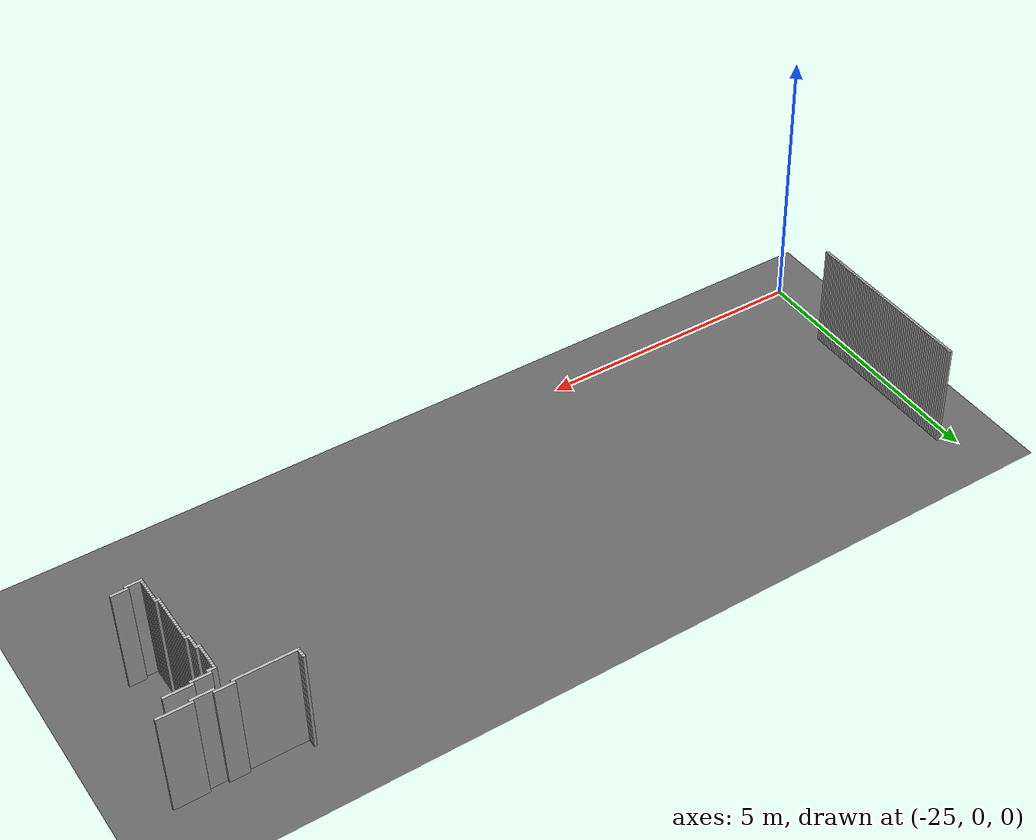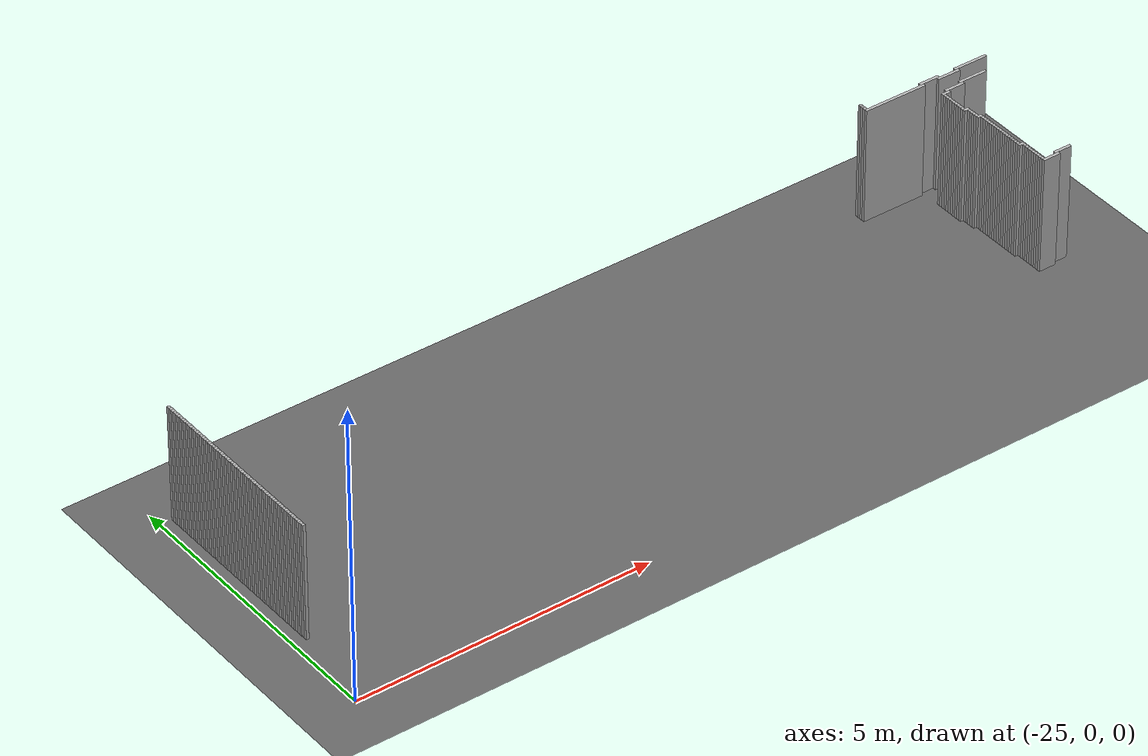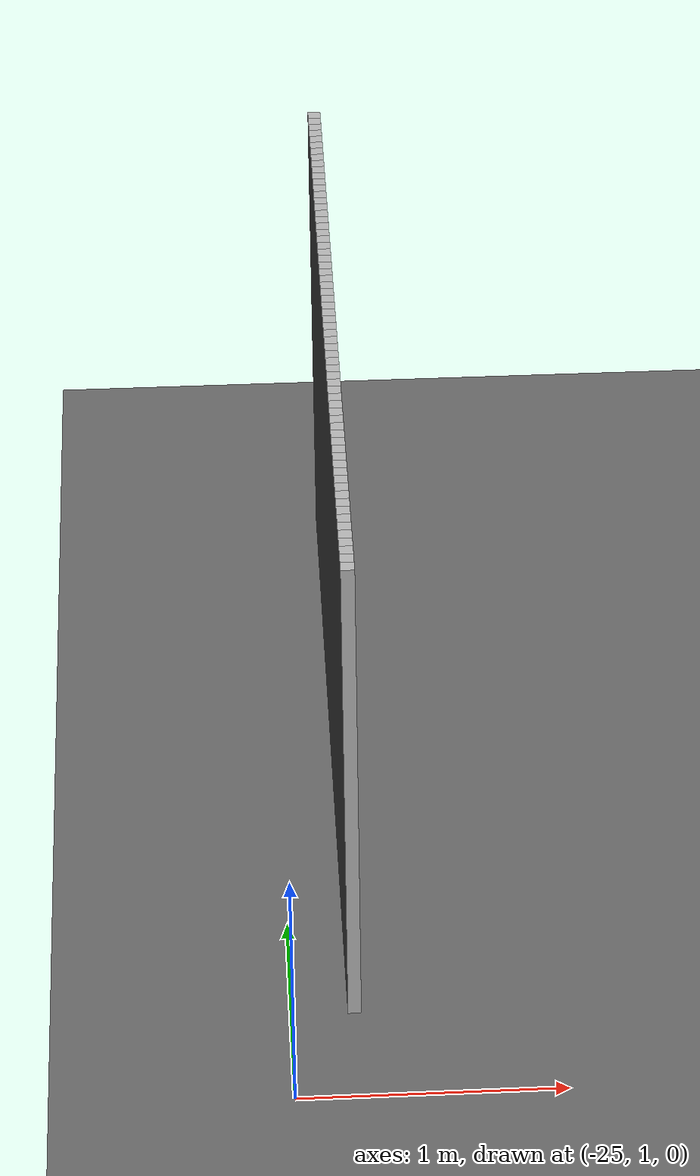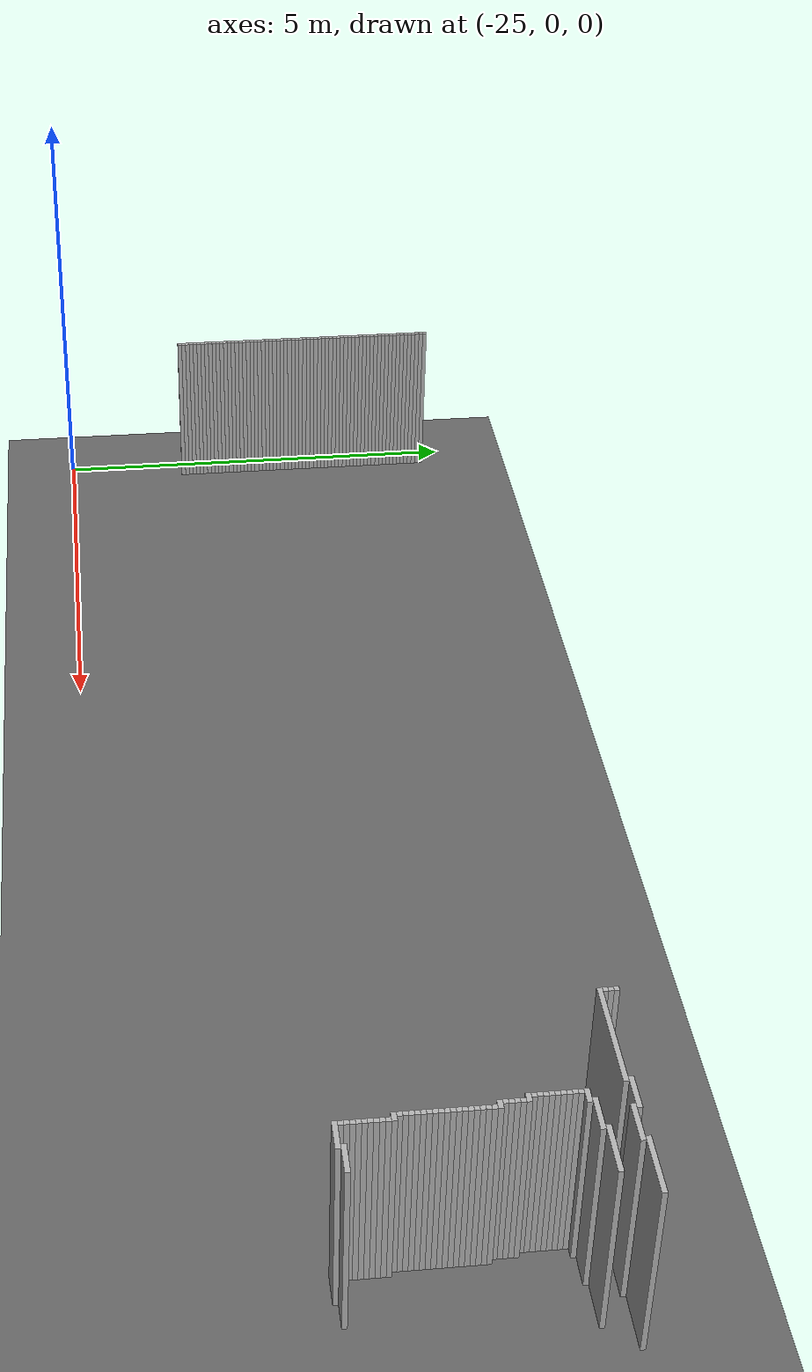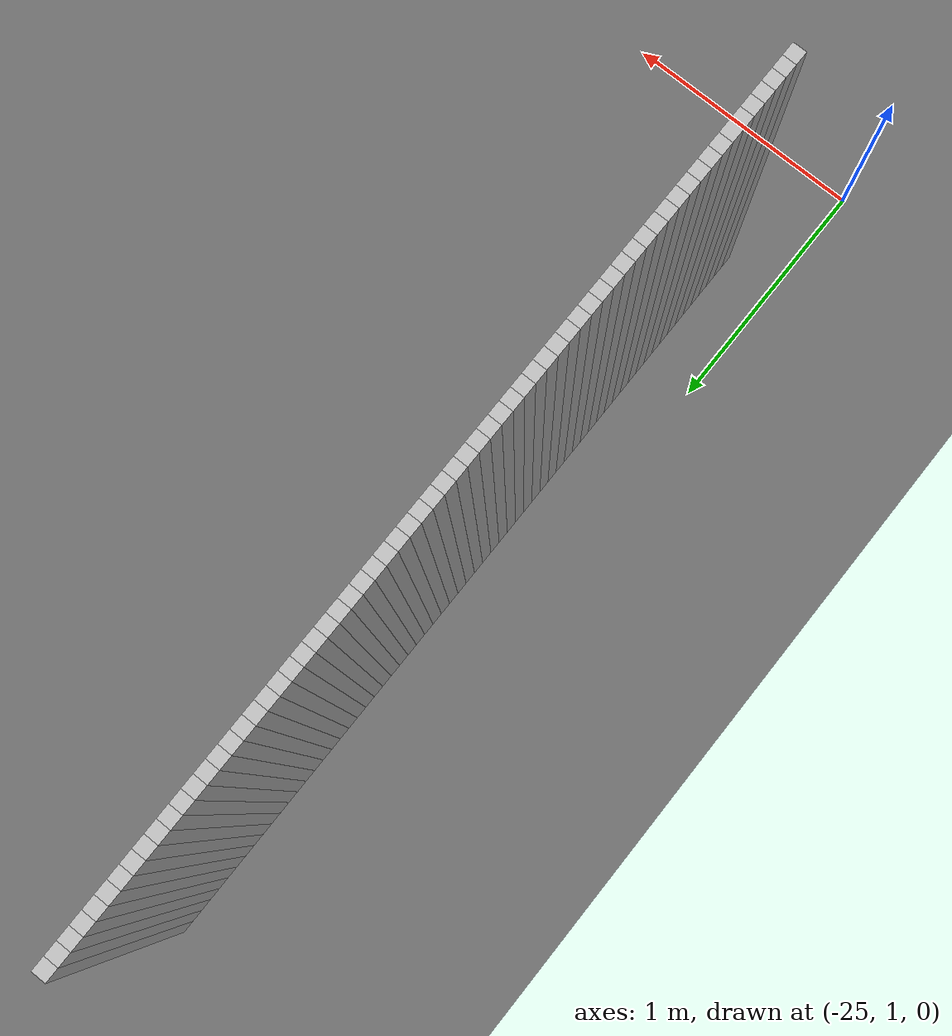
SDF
<sdf version="1.8">
 <world name="real_map">
  <model name="ground">
   <static>true</static>
   <link name="l">
    <collision name="c"><geometry><plane><normal>0 0 1</normal><size>100 100</size></plane></geometry></collision>
    <visual name="v">
     <geometry><plane><normal>0 0 1</normal><size>100 100</size></plane></geometry>
     <material><ambient>0.3 0.3 0.3 1</ambient><diffuse>0.4 0.4 0.4 1</diffuse></material>
    </visual>
   </link>
  </model>
  <model name="walls">
   <static>true</static>
   <link name="w834">
    <pose>-24.766 4.742 1.000 0 0 0</pose>
    <collision name="c"><geometry><box><size>0.050 0.050 2.000</size></box></geometry></collision>
    <visual name="v">
     <geometry><box><size>0.050 0.050 2.000</size></box></geometry>
     <material><ambient>0.7 0.7 0.7 1</ambient><diffuse>0.7 0.7 0.7 1</diffuse></material>
    </visual>
   </link>
   <link name="w838">
    <pose>-24.766 4.692 1.000 0 0 0</pose>
    <collision name="c"><geometry><box><size>0.050 0.050 2.000</size></box></geometry></collision>
    <visual name="v">
     <geometry><box><size>0.050 0.050 2.000</size></box></geometry>
     <material><ambient>0.7 0.7 0.7 1</ambient><diffuse>0.7 0.7 0.7 1</diffuse></material>
    </visual>
   </link>
   <link name="w839">
    <pose>-12.616 4.692 1.000 0 0 0</pose>
    <collision name="c"><geometry><box><size>0.050 0.050 2.000</size></box></geometry></collision>
    <visual name="v">
     <geometry><box><size>0.050 0.050 2.000</size></box></geometry>
     <material><ambient>0.7 0.7 0.7 1</ambient><diffuse>0.7 0.7 0.7 1</diffuse></material>
    </visual>
   </link>
   <link name="w842">
    <pose>-24.766 4.642 1.000 0 0 0</pose>
    <collision name="c"><geometry><box><size>0.050 0.050 2.000</size></box></geometry></collision>
    <visual name="v">
     <geometry><box><size>0.050 0.050 2.000</size></box></geometry>
     <material><ambient>0.7 0.7 0.7 1</ambient><diffuse>0.7 0.7 0.7 1</diffuse></material>
    </visual>
   </link>
   <link name="w843">
    <pose>-12.616 4.642 1.000 0 0 0</pose>
    <collision name="c"><geometry><box><size>0.050 0.050 2.000</size></box></geometry></collision>
    <visual name="v">
     <geometry><box><size>0.050 0.050 2.000</size></box></geometry>
     <material><ambient>0.7 0.7 0.7 1</ambient><diffuse>0.7 0.7 0.7 1</diffuse></material>
    </visual>
   </link>
   <link name="w847">
    <pose>-24.766 4.592 1.000 0 0 0</pose>
    <collision name="c"><geometry><box><size>0.050 0.050 2.000</size></box></geometry></collision>
    <visual name="v">
     <geometry><box><size>0.050 0.050 2.000</size></box></geometry>
     <material><ambient>0.7 0.7 0.7 1</ambient><diffuse>0.7 0.7 0.7 1</diffuse></material>
    </visual>
   </link>
   <link name="w848">
    <pose>-12.616 4.592 1.000 0 0 0</pose>
    <collision name="c"><geometry><box><size>0.050 0.050 2.000</size></box></geometry></collision>
    <visual name="v">
     <geometry><box><size>0.050 0.050 2.000</size></box></geometry>
     <material><ambient>0.7 0.7 0.7 1</ambient><diffuse>0.7 0.7 0.7 1</diffuse></material>
    </visual>
   </link>
   <link name="w849">
    <pose>-11.416 4.592 1.000 0 0 0</pose>
    <collision name="c"><geometry><box><size>0.350 0.050 2.000</size></box></geometry></collision>
    <visual name="v">
     <geometry><box><size>0.350 0.050 2.000</size></box></geometry>
     <material><ambient>0.7 0.7 0.7 1</ambient><diffuse>0.7 0.7 0.7 1</diffuse></material>
    </visual>
   </link>
   <link name="w850">
    <pose>-10.641 4.592 1.000 0 0 0</pose>
    <collision name="c"><geometry><box><size>0.600 0.050 2.000</size></box></geometry></collision>
    <visual name="v">
     <geometry><box><size>0.600 0.050 2.000</size></box></geometry>
     <material><ambient>0.7 0.7 0.7 1</ambient><diffuse>0.7 0.7 0.7 1</diffuse></material>
    </visual>
   </link>
   <link name="w854">
    <pose>-24.766 4.542 1.000 0 0 0</pose>
    <collision name="c"><geometry><box><size>0.050 0.050 2.000</size></box></geometry></collision>
    <visual name="v">
     <geometry><box><size>0.050 0.050 2.000</size></box></geometry>
     <material><ambient>0.7 0.7 0.7 1</ambient><diffuse>0.7 0.7 0.7 1</diffuse></material>
    </visual>
   </link>
   <link name="w855">
    <pose>-12.091 4.542 1.000 0 0 0</pose>
    <collision name="c"><geometry><box><size>1.100 0.050 2.000</size></box></geometry></collision>
    <visual name="v">
     <geometry><box><size>1.100 0.050 2.000</size></box></geometry>
     <material><ambient>0.7 0.7 0.7 1</ambient><diffuse>0.7 0.7 0.7 1</diffuse></material>
    </visual>
   </link>
   <link name="w856">
    <pose>-11.091 4.542 1.000 0 0 0</pose>
    <collision name="c"><geometry><box><size>0.400 0.050 2.000</size></box></geometry></collision>
    <visual name="v">
     <geometry><box><size>0.400 0.050 2.000</size></box></geometry>
     <material><ambient>0.7 0.7 0.7 1</ambient><diffuse>0.7 0.7 0.7 1</diffuse></material>
    </visual>
   </link>
   <link name="w860">
    <pose>-24.766 4.492 1.000 0 0 0</pose>
    <collision name="c"><geometry><box><size>0.050 0.050 2.000</size></box></geometry></collision>
    <visual name="v">
     <geometry><box><size>0.050 0.050 2.000</size></box></geometry>
     <material><ambient>0.7 0.7 0.7 1</ambient><diffuse>0.7 0.7 0.7 1</diffuse></material>
    </visual>
   </link>
   <link name="w864">
    <pose>-24.766 4.442 1.000 0 0 0</pose>
    <collision name="c"><geometry><box><size>0.050 0.050 2.000</size></box></geometry></collision>
    <visual name="v">
     <geometry><box><size>0.050 0.050 2.000</size></box></geometry>
     <material><ambient>0.7 0.7 0.7 1</ambient><diffuse>0.7 0.7 0.7 1</diffuse></material>
    </visual>
   </link>
   <link name="w868">
    <pose>-24.766 4.392 1.000 0 0 0</pose>
    <collision name="c"><geometry><box><size>0.050 0.050 2.000</size></box></geometry></collision>
    <visual name="v">
     <geometry><box><size>0.050 0.050 2.000</size></box></geometry>
     <material><ambient>0.7 0.7 0.7 1</ambient><diffuse>0.7 0.7 0.7 1</diffuse></material>
    </visual>
   </link>
   <link name="w872">
    <pose>-24.766 4.342 1.000 0 0 0</pose>
    <collision name="c"><geometry><box><size>0.050 0.050 2.000</size></box></geometry></collision>
    <visual name="v">
     <geometry><box><size>0.050 0.050 2.000</size></box></geometry>
     <material><ambient>0.7 0.7 0.7 1</ambient><diffuse>0.7 0.7 0.7 1</diffuse></material>
    </visual>
   </link>
   <link name="w876">
    <pose>-24.766 4.292 1.000 0 0 0</pose>
    <collision name="c"><geometry><box><size>0.050 0.050 2.000</size></box></geometry></collision>
    <visual name="v">
     <geometry><box><size>0.050 0.050 2.000</size></box></geometry>
     <material><ambient>0.7 0.7 0.7 1</ambient><diffuse>0.7 0.7 0.7 1</diffuse></material>
    </visual>
   </link>
   <link name="w877">
    <pose>-10.841 4.292 1.000 0 0 0</pose>
    <collision name="c"><geometry><box><size>0.500 0.050 2.000</size></box></geometry></collision>
    <visual name="v">
     <geometry><box><size>0.500 0.050 2.000</size></box></geometry>
     <material><ambient>0.7 0.7 0.7 1</ambient><diffuse>0.7 0.7 0.7 1</diffuse></material>
    </visual>
   </link>
   <link name="w880">
    <pose>-24.766 4.242 1.000 0 0 0</pose>
    <collision name="c"><geometry><box><size>0.050 0.050 2.000</size></box></geometry></collision>
    <visual name="v">
     <geometry><box><size>0.050 0.050 2.000</size></box></geometry>
     <material><ambient>0.7 0.7 0.7 1</ambient><diffuse>0.7 0.7 0.7 1</diffuse></material>
    </visual>
   </link>
   <link name="w881">
    <pose>-11.216 4.242 1.000 0 0 0</pose>
    <collision name="c"><geometry><box><size>0.350 0.050 2.000</size></box></geometry></collision>
    <visual name="v">
     <geometry><box><size>0.350 0.050 2.000</size></box></geometry>
     <material><ambient>0.7 0.7 0.7 1</ambient><diffuse>0.7 0.7 0.7 1</diffuse></material>
    </visual>
   </link>
   <link name="w884">
    <pose>-24.766 4.192 1.000 0 0 0</pose>
    <collision name="c"><geometry><box><size>0.050 0.050 2.000</size></box></geometry></collision>
    <visual name="v">
     <geometry><box><size>0.050 0.050 2.000</size></box></geometry>
     <material><ambient>0.7 0.7 0.7 1</ambient><diffuse>0.7 0.7 0.7 1</diffuse></material>
    </visual>
   </link>
   <link name="w885">
    <pose>-11.416 4.192 1.000 0 0 0</pose>
    <collision name="c"><geometry><box><size>0.150 0.050 2.000</size></box></geometry></collision>
    <visual name="v">
     <geometry><box><size>0.150 0.050 2.000</size></box></geometry>
     <material><ambient>0.7 0.7 0.7 1</ambient><diffuse>0.7 0.7 0.7 1</diffuse></material>
    </visual>
   </link>
   <link name="w888">
    <pose>-24.766 4.142 1.000 0 0 0</pose>
    <collision name="c"><geometry><box><size>0.050 0.050 2.000</size></box></geometry></collision>
    <visual name="v">
     <geometry><box><size>0.050 0.050 2.000</size></box></geometry>
     <material><ambient>0.7 0.7 0.7 1</ambient><diffuse>0.7 0.7 0.7 1</diffuse></material>
    </visual>
   </link>
   <link name="w889">
    <pose>-11.466 4.142 1.000 0 0 0</pose>
    <collision name="c"><geometry><box><size>0.050 0.050 2.000</size></box></geometry></collision>
    <visual name="v">
     <geometry><box><size>0.050 0.050 2.000</size></box></geometry>
     <material><ambient>0.7 0.7 0.7 1</ambient><diffuse>0.7 0.7 0.7 1</diffuse></material>
    </visual>
   </link>
   <link name="w892">
    <pose>-24.766 4.092 1.000 0 0 0</pose>
    <collision name="c"><geometry><box><size>0.050 0.050 2.000</size></box></geometry></collision>
    <visual name="v">
     <geometry><box><size>0.050 0.050 2.000</size></box></geometry>
     <material><ambient>0.7 0.7 0.7 1</ambient><diffuse>0.7 0.7 0.7 1</diffuse></material>
    </visual>
   </link>
   <link name="w893">
    <pose>-11.466 4.092 1.000 0 0 0</pose>
    <collision name="c"><geometry><box><size>0.050 0.050 2.000</size></box></geometry></collision>
    <visual name="v">
     <geometry><box><size>0.050 0.050 2.000</size></box></geometry>
     <material><ambient>0.7 0.7 0.7 1</ambient><diffuse>0.7 0.7 0.7 1</diffuse></material>
    </visual>
   </link>
   <link name="w896">
    <pose>-24.766 4.042 1.000 0 0 0</pose>
    <collision name="c"><geometry><box><size>0.050 0.050 2.000</size></box></geometry></collision>
    <visual name="v">
     <geometry><box><size>0.050 0.050 2.000</size></box></geometry>
     <material><ambient>0.7 0.7 0.7 1</ambient><diffuse>0.7 0.7 0.7 1</diffuse></material>
    </visual>
   </link>
   <link name="w897">
    <pose>-11.466 4.042 1.000 0 0 0</pose>
    <collision name="c"><geometry><box><size>0.050 0.050 2.000</size></box></geometry></collision>
    <visual name="v">
     <geometry><box><size>0.050 0.050 2.000</size></box></geometry>
     <material><ambient>0.7 0.7 0.7 1</ambient><diffuse>0.7 0.7 0.7 1</diffuse></material>
    </visual>
   </link>
   <link name="w900">
    <pose>-24.766 3.992 1.000 0 0 0</pose>
    <collision name="c"><geometry><box><size>0.050 0.050 2.000</size></box></geometry></collision>
    <visual name="v">
     <geometry><box><size>0.050 0.050 2.000</size></box></geometry>
     <material><ambient>0.7 0.7 0.7 1</ambient><diffuse>0.7 0.7 0.7 1</diffuse></material>
    </visual>
   </link>
   <link name="w901">
    <pose>-11.466 3.992 1.000 0 0 0</pose>
    <collision name="c"><geometry><box><size>0.050 0.050 2.000</size></box></geometry></collision>
    <visual name="v">
     <geometry><box><size>0.050 0.050 2.000</size></box></geometry>
     <material><ambient>0.7 0.7 0.7 1</ambient><diffuse>0.7 0.7 0.7 1</diffuse></material>
    </visual>
   </link>
   <link name="w904">
    <pose>-24.766 3.942 1.000 0 0 0</pose>
    <collision name="c"><geometry><box><size>0.050 0.050 2.000</size></box></geometry></collision>
    <visual name="v">
     <geometry><box><size>0.050 0.050 2.000</size></box></geometry>
     <material><ambient>0.7 0.7 0.7 1</ambient><diffuse>0.7 0.7 0.7 1</diffuse></material>
    </visual>
   </link>
   <link name="w905">
    <pose>-11.466 3.942 1.000 0 0 0</pose>
    <collision name="c"><geometry><box><size>0.050 0.050 2.000</size></box></geometry></collision>
    <visual name="v">
     <geometry><box><size>0.050 0.050 2.000</size></box></geometry>
     <material><ambient>0.7 0.7 0.7 1</ambient><diffuse>0.7 0.7 0.7 1</diffuse></material>
    </visual>
   </link>
   <link name="w908">
    <pose>-24.766 3.892 1.000 0 0 0</pose>
    <collision name="c"><geometry><box><size>0.050 0.050 2.000</size></box></geometry></collision>
    <visual name="v">
     <geometry><box><size>0.050 0.050 2.000</size></box></geometry>
     <material><ambient>0.7 0.7 0.7 1</ambient><diffuse>0.7 0.7 0.7 1</diffuse></material>
    </visual>
   </link>
   <link name="w909">
    <pose>-11.466 3.892 1.000 0 0 0</pose>
    <collision name="c"><geometry><box><size>0.050 0.050 2.000</size></box></geometry></collision>
    <visual name="v">
     <geometry><box><size>0.050 0.050 2.000</size></box></geometry>
     <material><ambient>0.7 0.7 0.7 1</ambient><diffuse>0.7 0.7 0.7 1</diffuse></material>
    </visual>
   </link>
   <link name="w912">
    <pose>-24.766 3.842 1.000 0 0 0</pose>
    <collision name="c"><geometry><box><size>0.050 0.050 2.000</size></box></geometry></collision>
    <visual name="v">
     <geometry><box><size>0.050 0.050 2.000</size></box></geometry>
     <material><ambient>0.7 0.7 0.7 1</ambient><diffuse>0.7 0.7 0.7 1</diffuse></material>
    </visual>
   </link>
   <link name="w913">
    <pose>-11.466 3.842 1.000 0 0 0</pose>
    <collision name="c"><geometry><box><size>0.050 0.050 2.000</size></box></geometry></collision>
    <visual name="v">
     <geometry><box><size>0.050 0.050 2.000</size></box></geometry>
     <material><ambient>0.7 0.7 0.7 1</ambient><diffuse>0.7 0.7 0.7 1</diffuse></material>
    </visual>
   </link>
   <link name="w916">
    <pose>-24.766 3.792 1.000 0 0 0</pose>
    <collision name="c"><geometry><box><size>0.050 0.050 2.000</size></box></geometry></collision>
    <visual name="v">
     <geometry><box><size>0.050 0.050 2.000</size></box></geometry>
     <material><ambient>0.7 0.7 0.7 1</ambient><diffuse>0.7 0.7 0.7 1</diffuse></material>
    </visual>
   </link>
   <link name="w917">
    <pose>-11.466 3.792 1.000 0 0 0</pose>
    <collision name="c"><geometry><box><size>0.050 0.050 2.000</size></box></geometry></collision>
    <visual name="v">
     <geometry><box><size>0.050 0.050 2.000</size></box></geometry>
     <material><ambient>0.7 0.7 0.7 1</ambient><diffuse>0.7 0.7 0.7 1</diffuse></material>
    </visual>
   </link>
   <link name="w920">
    <pose>-24.766 3.742 1.000 0 0 0</pose>
    <collision name="c"><geometry><box><size>0.050 0.050 2.000</size></box></geometry></collision>
    <visual name="v">
     <geometry><box><size>0.050 0.050 2.000</size></box></geometry>
     <material><ambient>0.7 0.7 0.7 1</ambient><diffuse>0.7 0.7 0.7 1</diffuse></material>
    </visual>
   </link>
   <link name="w921">
    <pose>-11.466 3.742 1.000 0 0 0</pose>
    <collision name="c"><geometry><box><size>0.050 0.050 2.000</size></box></geometry></collision>
    <visual name="v">
     <geometry><box><size>0.050 0.050 2.000</size></box></geometry>
     <material><ambient>0.7 0.7 0.7 1</ambient><diffuse>0.7 0.7 0.7 1</diffuse></material>
    </visual>
   </link>
   <link name="w924">
    <pose>-24.766 3.692 1.000 0 0 0</pose>
    <collision name="c"><geometry><box><size>0.050 0.050 2.000</size></box></geometry></collision>
    <visual name="v">
     <geometry><box><size>0.050 0.050 2.000</size></box></geometry>
     <material><ambient>0.7 0.7 0.7 1</ambient><diffuse>0.7 0.7 0.7 1</diffuse></material>
    </visual>
   </link>
   <link name="w925">
    <pose>-11.441 3.692 1.000 0 0 0</pose>
    <collision name="c"><geometry><box><size>0.100 0.050 2.000</size></box></geometry></collision>
    <visual name="v">
     <geometry><box><size>0.100 0.050 2.000</size></box></geometry>
     <material><ambient>0.7 0.7 0.7 1</ambient><diffuse>0.7 0.7 0.7 1</diffuse></material>
    </visual>
   </link>
   <link name="w928">
    <pose>-24.766 3.642 1.000 0 0 0</pose>
    <collision name="c"><geometry><box><size>0.050 0.050 2.000</size></box></geometry></collision>
    <visual name="v">
     <geometry><box><size>0.050 0.050 2.000</size></box></geometry>
     <material><ambient>0.7 0.7 0.7 1</ambient><diffuse>0.7 0.7 0.7 1</diffuse></material>
    </visual>
   </link>
   <link name="w929">
    <pose>-11.416 3.642 1.000 0 0 0</pose>
    <collision name="c"><geometry><box><size>0.050 0.050 2.000</size></box></geometry></collision>
    <visual name="v">
     <geometry><box><size>0.050 0.050 2.000</size></box></geometry>
     <material><ambient>0.7 0.7 0.7 1</ambient><diffuse>0.7 0.7 0.7 1</diffuse></material>
    </visual>
   </link>
   <link name="w932">
    <pose>-24.766 3.592 1.000 0 0 0</pose>
    <collision name="c"><geometry><box><size>0.050 0.050 2.000</size></box></geometry></collision>
    <visual name="v">
     <geometry><box><size>0.050 0.050 2.000</size></box></geometry>
     <material><ambient>0.7 0.7 0.7 1</ambient><diffuse>0.7 0.7 0.7 1</diffuse></material>
    </visual>
   </link>
   <link name="w933">
    <pose>-11.416 3.592 1.000 0 0 0</pose>
    <collision name="c"><geometry><box><size>0.050 0.050 2.000</size></box></geometry></collision>
    <visual name="v">
     <geometry><box><size>0.050 0.050 2.000</size></box></geometry>
     <material><ambient>0.7 0.7 0.7 1</ambient><diffuse>0.7 0.7 0.7 1</diffuse></material>
    </visual>
   </link>
   <link name="w936">
    <pose>-24.766 3.542 1.000 0 0 0</pose>
    <collision name="c"><geometry><box><size>0.050 0.050 2.000</size></box></geometry></collision>
    <visual name="v">
     <geometry><box><size>0.050 0.050 2.000</size></box></geometry>
     <material><ambient>0.7 0.7 0.7 1</ambient><diffuse>0.7 0.7 0.7 1</diffuse></material>
    </visual>
   </link>
   <link name="w937">
    <pose>-11.416 3.542 1.000 0 0 0</pose>
    <collision name="c"><geometry><box><size>0.050 0.050 2.000</size></box></geometry></collision>
    <visual name="v">
     <geometry><box><size>0.050 0.050 2.000</size></box></geometry>
     <material><ambient>0.7 0.7 0.7 1</ambient><diffuse>0.7 0.7 0.7 1</diffuse></material>
    </visual>
   </link>
   <link name="w940">
    <pose>-24.766 3.492 1.000 0 0 0</pose>
    <collision name="c"><geometry><box><size>0.050 0.050 2.000</size></box></geometry></collision>
    <visual name="v">
     <geometry><box><size>0.050 0.050 2.000</size></box></geometry>
     <material><ambient>0.7 0.7 0.7 1</ambient><diffuse>0.7 0.7 0.7 1</diffuse></material>
    </visual>
   </link>
   <link name="w941">
    <pose>-11.416 3.492 1.000 0 0 0</pose>
    <collision name="c"><geometry><box><size>0.050 0.050 2.000</size></box></geometry></collision>
    <visual name="v">
     <geometry><box><size>0.050 0.050 2.000</size></box></geometry>
     <material><ambient>0.7 0.7 0.7 1</ambient><diffuse>0.7 0.7 0.7 1</diffuse></material>
    </visual>
   </link>
   <link name="w944">
    <pose>-24.766 3.442 1.000 0 0 0</pose>
    <collision name="c"><geometry><box><size>0.050 0.050 2.000</size></box></geometry></collision>
    <visual name="v">
     <geometry><box><size>0.050 0.050 2.000</size></box></geometry>
     <material><ambient>0.7 0.7 0.7 1</ambient><diffuse>0.7 0.7 0.7 1</diffuse></material>
    </visual>
   </link>
   <link name="w945">
    <pose>-11.391 3.442 1.000 0 0 0</pose>
    <collision name="c"><geometry><box><size>0.100 0.050 2.000</size></box></geometry></collision>
    <visual name="v">
     <geometry><box><size>0.100 0.050 2.000</size></box></geometry>
     <material><ambient>0.7 0.7 0.7 1</ambient><diffuse>0.7 0.7 0.7 1</diffuse></material>
    </visual>
   </link>
   <link name="w948">
    <pose>-24.766 3.392 1.000 0 0 0</pose>
    <collision name="c"><geometry><box><size>0.050 0.050 2.000</size></box></geometry></collision>
    <visual name="v">
     <geometry><box><size>0.050 0.050 2.000</size></box></geometry>
     <material><ambient>0.7 0.7 0.7 1</ambient><diffuse>0.7 0.7 0.7 1</diffuse></material>
    </visual>
   </link>
   <link name="w949">
    <pose>-11.366 3.392 1.000 0 0 0</pose>
    <collision name="c"><geometry><box><size>0.050 0.050 2.000</size></box></geometry></collision>
    <visual name="v">
     <geometry><box><size>0.050 0.050 2.000</size></box></geometry>
     <material><ambient>0.7 0.7 0.7 1</ambient><diffuse>0.7 0.7 0.7 1</diffuse></material>
    </visual>
   </link>
   <link name="w952">
    <pose>-24.766 3.342 1.000 0 0 0</pose>
    <collision name="c"><geometry><box><size>0.050 0.050 2.000</size></box></geometry></collision>
    <visual name="v">
     <geometry><box><size>0.050 0.050 2.000</size></box></geometry>
     <material><ambient>0.7 0.7 0.7 1</ambient><diffuse>0.7 0.7 0.7 1</diffuse></material>
    </visual>
   </link>
   <link name="w953">
    <pose>-11.366 3.342 1.000 0 0 0</pose>
    <collision name="c"><geometry><box><size>0.050 0.050 2.000</size></box></geometry></collision>
    <visual name="v">
     <geometry><box><size>0.050 0.050 2.000</size></box></geometry>
     <material><ambient>0.7 0.7 0.7 1</ambient><diffuse>0.7 0.7 0.7 1</diffuse></material>
    </visual>
   </link>
   <link name="w956">
    <pose>-24.766 3.292 1.000 0 0 0</pose>
    <collision name="c"><geometry><box><size>0.050 0.050 2.000</size></box></geometry></collision>
    <visual name="v">
     <geometry><box><size>0.050 0.050 2.000</size></box></geometry>
     <material><ambient>0.7 0.7 0.7 1</ambient><diffuse>0.7 0.7 0.7 1</diffuse></material>
    </visual>
   </link>
   <link name="w957">
    <pose>-11.366 3.292 1.000 0 0 0</pose>
    <collision name="c"><geometry><box><size>0.050 0.050 2.000</size></box></geometry></collision>
    <visual name="v">
     <geometry><box><size>0.050 0.050 2.000</size></box></geometry>
     <material><ambient>0.7 0.7 0.7 1</ambient><diffuse>0.7 0.7 0.7 1</diffuse></material>
    </visual>
   </link>
   <link name="w960">
    <pose>-24.766 3.242 1.000 0 0 0</pose>
    <collision name="c"><geometry><box><size>0.050 0.050 2.000</size></box></geometry></collision>
    <visual name="v">
     <geometry><box><size>0.050 0.050 2.000</size></box></geometry>
     <material><ambient>0.7 0.7 0.7 1</ambient><diffuse>0.7 0.7 0.7 1</diffuse></material>
    </visual>
   </link>
   <link name="w961">
    <pose>-11.366 3.242 1.000 0 0 0</pose>
    <collision name="c"><geometry><box><size>0.050 0.050 2.000</size></box></geometry></collision>
    <visual name="v">
     <geometry><box><size>0.050 0.050 2.000</size></box></geometry>
     <material><ambient>0.7 0.7 0.7 1</ambient><diffuse>0.7 0.7 0.7 1</diffuse></material>
    </visual>
   </link>
   <link name="w964">
    <pose>-24.766 3.192 1.000 0 0 0</pose>
    <collision name="c"><geometry><box><size>0.050 0.050 2.000</size></box></geometry></collision>
    <visual name="v">
     <geometry><box><size>0.050 0.050 2.000</size></box></geometry>
     <material><ambient>0.7 0.7 0.7 1</ambient><diffuse>0.7 0.7 0.7 1</diffuse></material>
    </visual>
   </link>
   <link name="w965">
    <pose>-11.366 3.192 1.000 0 0 0</pose>
    <collision name="c"><geometry><box><size>0.050 0.050 2.000</size></box></geometry></collision>
    <visual name="v">
     <geometry><box><size>0.050 0.050 2.000</size></box></geometry>
     <material><ambient>0.7 0.7 0.7 1</ambient><diffuse>0.7 0.7 0.7 1</diffuse></material>
    </visual>
   </link>
   <link name="w969">
    <pose>-24.766 3.142 1.000 0 0 0</pose>
    <collision name="c"><geometry><box><size>0.050 0.050 2.000</size></box></geometry></collision>
    <visual name="v">
     <geometry><box><size>0.050 0.050 2.000</size></box></geometry>
     <material><ambient>0.7 0.7 0.7 1</ambient><diffuse>0.7 0.7 0.7 1</diffuse></material>
    </visual>
   </link>
   <link name="w970">
    <pose>-11.366 3.142 1.000 0 0 0</pose>
    <collision name="c"><geometry><box><size>0.050 0.050 2.000</size></box></geometry></collision>
    <visual name="v">
     <geometry><box><size>0.050 0.050 2.000</size></box></geometry>
     <material><ambient>0.7 0.7 0.7 1</ambient><diffuse>0.7 0.7 0.7 1</diffuse></material>
    </visual>
   </link>
   <link name="w974">
    <pose>-24.766 3.092 1.000 0 0 0</pose>
    <collision name="c"><geometry><box><size>0.050 0.050 2.000</size></box></geometry></collision>
    <visual name="v">
     <geometry><box><size>0.050 0.050 2.000</size></box></geometry>
     <material><ambient>0.7 0.7 0.7 1</ambient><diffuse>0.7 0.7 0.7 1</diffuse></material>
    </visual>
   </link>
   <link name="w975">
    <pose>-11.366 3.092 1.000 0 0 0</pose>
    <collision name="c"><geometry><box><size>0.050 0.050 2.000</size></box></geometry></collision>
    <visual name="v">
     <geometry><box><size>0.050 0.050 2.000</size></box></geometry>
     <material><ambient>0.7 0.7 0.7 1</ambient><diffuse>0.7 0.7 0.7 1</diffuse></material>
    </visual>
   </link>
   <link name="w979">
    <pose>-24.766 3.042 1.000 0 0 0</pose>
    <collision name="c"><geometry><box><size>0.050 0.050 2.000</size></box></geometry></collision>
    <visual name="v">
     <geometry><box><size>0.050 0.050 2.000</size></box></geometry>
     <material><ambient>0.7 0.7 0.7 1</ambient><diffuse>0.7 0.7 0.7 1</diffuse></material>
    </visual>
   </link>
   <link name="w980">
    <pose>-11.366 3.042 1.000 0 0 0</pose>
    <collision name="c"><geometry><box><size>0.050 0.050 2.000</size></box></geometry></collision>
    <visual name="v">
     <geometry><box><size>0.050 0.050 2.000</size></box></geometry>
     <material><ambient>0.7 0.7 0.7 1</ambient><diffuse>0.7 0.7 0.7 1</diffuse></material>
    </visual>
   </link>
   <link name="w984">
    <pose>-24.766 2.992 1.000 0 0 0</pose>
    <collision name="c"><geometry><box><size>0.050 0.050 2.000</size></box></geometry></collision>
    <visual name="v">
     <geometry><box><size>0.050 0.050 2.000</size></box></geometry>
     <material><ambient>0.7 0.7 0.7 1</ambient><diffuse>0.7 0.7 0.7 1</diffuse></material>
    </visual>
   </link>
   <link name="w985">
    <pose>-11.366 2.992 1.000 0 0 0</pose>
    <collision name="c"><geometry><box><size>0.050 0.050 2.000</size></box></geometry></collision>
    <visual name="v">
     <geometry><box><size>0.050 0.050 2.000</size></box></geometry>
     <material><ambient>0.7 0.7 0.7 1</ambient><diffuse>0.7 0.7 0.7 1</diffuse></material>
    </visual>
   </link>
   <link name="w989">
    <pose>-24.766 2.942 1.000 0 0 0</pose>
    <collision name="c"><geometry><box><size>0.050 0.050 2.000</size></box></geometry></collision>
    <visual name="v">
     <geometry><box><size>0.050 0.050 2.000</size></box></geometry>
     <material><ambient>0.7 0.7 0.7 1</ambient><diffuse>0.7 0.7 0.7 1</diffuse></material>
    </visual>
   </link>
   <link name="w990">
    <pose>-11.366 2.942 1.000 0 0 0</pose>
    <collision name="c"><geometry><box><size>0.050 0.050 2.000</size></box></geometry></collision>
    <visual name="v">
     <geometry><box><size>0.050 0.050 2.000</size></box></geometry>
     <material><ambient>0.7 0.7 0.7 1</ambient><diffuse>0.7 0.7 0.7 1</diffuse></material>
    </visual>
   </link>
   <link name="w993">
    <pose>-24.766 2.892 1.000 0 0 0</pose>
    <collision name="c"><geometry><box><size>0.050 0.050 2.000</size></box></geometry></collision>
    <visual name="v">
     <geometry><box><size>0.050 0.050 2.000</size></box></geometry>
     <material><ambient>0.7 0.7 0.7 1</ambient><diffuse>0.7 0.7 0.7 1</diffuse></material>
    </visual>
   </link>
   <link name="w994">
    <pose>-11.366 2.892 1.000 0 0 0</pose>
    <collision name="c"><geometry><box><size>0.050 0.050 2.000</size></box></geometry></collision>
    <visual name="v">
     <geometry><box><size>0.050 0.050 2.000</size></box></geometry>
     <material><ambient>0.7 0.7 0.7 1</ambient><diffuse>0.7 0.7 0.7 1</diffuse></material>
    </visual>
   </link>
   <link name="w996">
    <pose>-24.766 2.842 1.000 0 0 0</pose>
    <collision name="c"><geometry><box><size>0.050 0.050 2.000</size></box></geometry></collision>
    <visual name="v">
     <geometry><box><size>0.050 0.050 2.000</size></box></geometry>
     <material><ambient>0.7 0.7 0.7 1</ambient><diffuse>0.7 0.7 0.7 1</diffuse></material>
    </visual>
   </link>
   <link name="w997">
    <pose>-11.366 2.842 1.000 0 0 0</pose>
    <collision name="c"><geometry><box><size>0.050 0.050 2.000</size></box></geometry></collision>
    <visual name="v">
     <geometry><box><size>0.050 0.050 2.000</size></box></geometry>
     <material><ambient>0.7 0.7 0.7 1</ambient><diffuse>0.7 0.7 0.7 1</diffuse></material>
    </visual>
   </link>
   <link name="w999">
    <pose>-24.766 2.792 1.000 0 0 0</pose>
    <collision name="c"><geometry><box><size>0.050 0.050 2.000</size></box></geometry></collision>
    <visual name="v">
     <geometry><box><size>0.050 0.050 2.000</size></box></geometry>
     <material><ambient>0.7 0.7 0.7 1</ambient><diffuse>0.7 0.7 0.7 1</diffuse></material>
    </visual>
   </link>
   <link name="w1000">
    <pose>-11.366 2.792 1.000 0 0 0</pose>
    <collision name="c"><geometry><box><size>0.050 0.050 2.000</size></box></geometry></collision>
    <visual name="v">
     <geometry><box><size>0.050 0.050 2.000</size></box></geometry>
     <material><ambient>0.7 0.7 0.7 1</ambient><diffuse>0.7 0.7 0.7 1</diffuse></material>
    </visual>
   </link>
   <link name="w1002">
    <pose>-24.766 2.742 1.000 0 0 0</pose>
    <collision name="c"><geometry><box><size>0.050 0.050 2.000</size></box></geometry></collision>
    <visual name="v">
     <geometry><box><size>0.050 0.050 2.000</size></box></geometry>
     <material><ambient>0.7 0.7 0.7 1</ambient><diffuse>0.7 0.7 0.7 1</diffuse></material>
    </visual>
   </link>
   <link name="w1003">
    <pose>-11.366 2.742 1.000 0 0 0</pose>
    <collision name="c"><geometry><box><size>0.050 0.050 2.000</size></box></geometry></collision>
    <visual name="v">
     <geometry><box><size>0.050 0.050 2.000</size></box></geometry>
     <material><ambient>0.7 0.7 0.7 1</ambient><diffuse>0.7 0.7 0.7 1</diffuse></material>
    </visual>
   </link>
   <link name="w1005">
    <pose>-24.766 2.692 1.000 0 0 0</pose>
    <collision name="c"><geometry><box><size>0.050 0.050 2.000</size></box></geometry></collision>
    <visual name="v">
     <geometry><box><size>0.050 0.050 2.000</size></box></geometry>
     <material><ambient>0.7 0.7 0.7 1</ambient><diffuse>0.7 0.7 0.7 1</diffuse></material>
    </visual>
   </link>
   <link name="w1006">
    <pose>-11.366 2.692 1.000 0 0 0</pose>
    <collision name="c"><geometry><box><size>0.050 0.050 2.000</size></box></geometry></collision>
    <visual name="v">
     <geometry><box><size>0.050 0.050 2.000</size></box></geometry>
     <material><ambient>0.7 0.7 0.7 1</ambient><diffuse>0.7 0.7 0.7 1</diffuse></material>
    </visual>
   </link>
   <link name="w1008">
    <pose>-24.766 2.642 1.000 0 0 0</pose>
    <collision name="c"><geometry><box><size>0.050 0.050 2.000</size></box></geometry></collision>
    <visual name="v">
     <geometry><box><size>0.050 0.050 2.000</size></box></geometry>
     <material><ambient>0.7 0.7 0.7 1</ambient><diffuse>0.7 0.7 0.7 1</diffuse></material>
    </visual>
   </link>
   <link name="w1009">
    <pose>-11.366 2.642 1.000 0 0 0</pose>
    <collision name="c"><geometry><box><size>0.050 0.050 2.000</size></box></geometry></collision>
    <visual name="v">
     <geometry><box><size>0.050 0.050 2.000</size></box></geometry>
     <material><ambient>0.7 0.7 0.7 1</ambient><diffuse>0.7 0.7 0.7 1</diffuse></material>
    </visual>
   </link>
   <link name="w1011">
    <pose>-24.766 2.592 1.000 0 0 0</pose>
    <collision name="c"><geometry><box><size>0.050 0.050 2.000</size></box></geometry></collision>
    <visual name="v">
     <geometry><box><size>0.050 0.050 2.000</size></box></geometry>
     <material><ambient>0.7 0.7 0.7 1</ambient><diffuse>0.7 0.7 0.7 1</diffuse></material>
    </visual>
   </link>
   <link name="w1012">
    <pose>-11.366 2.592 1.000 0 0 0</pose>
    <collision name="c"><geometry><box><size>0.050 0.050 2.000</size></box></geometry></collision>
    <visual name="v">
     <geometry><box><size>0.050 0.050 2.000</size></box></geometry>
     <material><ambient>0.7 0.7 0.7 1</ambient><diffuse>0.7 0.7 0.7 1</diffuse></material>
    </visual>
   </link>
   <link name="w1014">
    <pose>-24.766 2.542 1.000 0 0 0</pose>
    <collision name="c"><geometry><box><size>0.050 0.050 2.000</size></box></geometry></collision>
    <visual name="v">
     <geometry><box><size>0.050 0.050 2.000</size></box></geometry>
     <material><ambient>0.7 0.7 0.7 1</ambient><diffuse>0.7 0.7 0.7 1</diffuse></material>
    </visual>
   </link>
   <link name="w1015">
    <pose>-11.341 2.542 1.000 0 0 0</pose>
    <collision name="c"><geometry><box><size>0.100 0.050 2.000</size></box></geometry></collision>
    <visual name="v">
     <geometry><box><size>0.100 0.050 2.000</size></box></geometry>
     <material><ambient>0.7 0.7 0.7 1</ambient><diffuse>0.7 0.7 0.7 1</diffuse></material>
    </visual>
   </link>
   <link name="w1017">
    <pose>-24.766 2.492 1.000 0 0 0</pose>
    <collision name="c"><geometry><box><size>0.050 0.050 2.000</size></box></geometry></collision>
    <visual name="v">
     <geometry><box><size>0.050 0.050 2.000</size></box></geometry>
     <material><ambient>0.7 0.7 0.7 1</ambient><diffuse>0.7 0.7 0.7 1</diffuse></material>
    </visual>
   </link>
   <link name="w1018">
    <pose>-11.316 2.492 1.000 0 0 0</pose>
    <collision name="c"><geometry><box><size>0.050 0.050 2.000</size></box></geometry></collision>
    <visual name="v">
     <geometry><box><size>0.050 0.050 2.000</size></box></geometry>
     <material><ambient>0.7 0.7 0.7 1</ambient><diffuse>0.7 0.7 0.7 1</diffuse></material>
    </visual>
   </link>
   <link name="w1020">
    <pose>-24.766 2.442 1.000 0 0 0</pose>
    <collision name="c"><geometry><box><size>0.050 0.050 2.000</size></box></geometry></collision>
    <visual name="v">
     <geometry><box><size>0.050 0.050 2.000</size></box></geometry>
     <material><ambient>0.7 0.7 0.7 1</ambient><diffuse>0.7 0.7 0.7 1</diffuse></material>
    </visual>
   </link>
   <link name="w1021">
    <pose>-11.316 2.442 1.000 0 0 0</pose>
    <collision name="c"><geometry><box><size>0.050 0.050 2.000</size></box></geometry></collision>
    <visual name="v">
     <geometry><box><size>0.050 0.050 2.000</size></box></geometry>
     <material><ambient>0.7 0.7 0.7 1</ambient><diffuse>0.7 0.7 0.7 1</diffuse></material>
    </visual>
   </link>
   <link name="w1024">
    <pose>-24.766 2.392 1.000 0 0 0</pose>
    <collision name="c"><geometry><box><size>0.050 0.050 2.000</size></box></geometry></collision>
    <visual name="v">
     <geometry><box><size>0.050 0.050 2.000</size></box></geometry>
     <material><ambient>0.7 0.7 0.7 1</ambient><diffuse>0.7 0.7 0.7 1</diffuse></material>
    </visual>
   </link>
   <link name="w1025">
    <pose>-11.316 2.392 1.000 0 0 0</pose>
    <collision name="c"><geometry><box><size>0.050 0.050 2.000</size></box></geometry></collision>
    <visual name="v">
     <geometry><box><size>0.050 0.050 2.000</size></box></geometry>
     <material><ambient>0.7 0.7 0.7 1</ambient><diffuse>0.7 0.7 0.7 1</diffuse></material>
    </visual>
   </link>
   <link name="w1028">
    <pose>-24.766 2.342 1.000 0 0 0</pose>
    <collision name="c"><geometry><box><size>0.050 0.050 2.000</size></box></geometry></collision>
    <visual name="v">
     <geometry><box><size>0.050 0.050 2.000</size></box></geometry>
     <material><ambient>0.7 0.7 0.7 1</ambient><diffuse>0.7 0.7 0.7 1</diffuse></material>
    </visual>
   </link>
   <link name="w1029">
    <pose>-11.316 2.342 1.000 0 0 0</pose>
    <collision name="c"><geometry><box><size>0.050 0.050 2.000</size></box></geometry></collision>
    <visual name="v">
     <geometry><box><size>0.050 0.050 2.000</size></box></geometry>
     <material><ambient>0.7 0.7 0.7 1</ambient><diffuse>0.7 0.7 0.7 1</diffuse></material>
    </visual>
   </link>
   <link name="w1032">
    <pose>-24.766 2.292 1.000 0 0 0</pose>
    <collision name="c"><geometry><box><size>0.050 0.050 2.000</size></box></geometry></collision>
    <visual name="v">
     <geometry><box><size>0.050 0.050 2.000</size></box></geometry>
     <material><ambient>0.7 0.7 0.7 1</ambient><diffuse>0.7 0.7 0.7 1</diffuse></material>
    </visual>
   </link>
   <link name="w1033">
    <pose>-11.316 2.292 1.000 0 0 0</pose>
    <collision name="c"><geometry><box><size>0.050 0.050 2.000</size></box></geometry></collision>
    <visual name="v">
     <geometry><box><size>0.050 0.050 2.000</size></box></geometry>
     <material><ambient>0.7 0.7 0.7 1</ambient><diffuse>0.7 0.7 0.7 1</diffuse></material>
    </visual>
   </link>
   <link name="w1036">
    <pose>-24.766 2.242 1.000 0 0 0</pose>
    <collision name="c"><geometry><box><size>0.050 0.050 2.000</size></box></geometry></collision>
    <visual name="v">
     <geometry><box><size>0.050 0.050 2.000</size></box></geometry>
     <material><ambient>0.7 0.7 0.7 1</ambient><diffuse>0.7 0.7 0.7 1</diffuse></material>
    </visual>
   </link>
   <link name="w1037">
    <pose>-11.316 2.242 1.000 0 0 0</pose>
    <collision name="c"><geometry><box><size>0.050 0.050 2.000</size></box></geometry></collision>
    <visual name="v">
     <geometry><box><size>0.050 0.050 2.000</size></box></geometry>
     <material><ambient>0.7 0.7 0.7 1</ambient><diffuse>0.7 0.7 0.7 1</diffuse></material>
    </visual>
   </link>
   <link name="w1040">
    <pose>-24.766 2.192 1.000 0 0 0</pose>
    <collision name="c"><geometry><box><size>0.050 0.050 2.000</size></box></geometry></collision>
    <visual name="v">
     <geometry><box><size>0.050 0.050 2.000</size></box></geometry>
     <material><ambient>0.7 0.7 0.7 1</ambient><diffuse>0.7 0.7 0.7 1</diffuse></material>
    </visual>
   </link>
   <link name="w1041">
    <pose>-11.316 2.192 1.000 0 0 0</pose>
    <collision name="c"><geometry><box><size>0.050 0.050 2.000</size></box></geometry></collision>
    <visual name="v">
     <geometry><box><size>0.050 0.050 2.000</size></box></geometry>
     <material><ambient>0.7 0.7 0.7 1</ambient><diffuse>0.7 0.7 0.7 1</diffuse></material>
    </visual>
   </link>
   <link name="w1044">
    <pose>-24.766 2.142 1.000 0 0 0</pose>
    <collision name="c"><geometry><box><size>0.050 0.050 2.000</size></box></geometry></collision>
    <visual name="v">
     <geometry><box><size>0.050 0.050 2.000</size></box></geometry>
     <material><ambient>0.7 0.7 0.7 1</ambient><diffuse>0.7 0.7 0.7 1</diffuse></material>
    </visual>
   </link>
   <link name="w1045">
    <pose>-11.316 2.142 1.000 0 0 0</pose>
    <collision name="c"><geometry><box><size>0.050 0.050 2.000</size></box></geometry></collision>
    <visual name="v">
     <geometry><box><size>0.050 0.050 2.000</size></box></geometry>
     <material><ambient>0.7 0.7 0.7 1</ambient><diffuse>0.7 0.7 0.7 1</diffuse></material>
    </visual>
   </link>
   <link name="w1048">
    <pose>-24.766 2.092 1.000 0 0 0</pose>
    <collision name="c"><geometry><box><size>0.050 0.050 2.000</size></box></geometry></collision>
    <visual name="v">
     <geometry><box><size>0.050 0.050 2.000</size></box></geometry>
     <material><ambient>0.7 0.7 0.7 1</ambient><diffuse>0.7 0.7 0.7 1</diffuse></material>
    </visual>
   </link>
   <link name="w1049">
    <pose>-11.316 2.092 1.000 0 0 0</pose>
    <collision name="c"><geometry><box><size>0.050 0.050 2.000</size></box></geometry></collision>
    <visual name="v">
     <geometry><box><size>0.050 0.050 2.000</size></box></geometry>
     <material><ambient>0.7 0.7 0.7 1</ambient><diffuse>0.7 0.7 0.7 1</diffuse></material>
    </visual>
   </link>
   <link name="w1050">
    <pose>-10.941 2.092 1.000 0 0 0</pose>
    <collision name="c"><geometry><box><size>0.300 0.050 2.000</size></box></geometry></collision>
    <visual name="v">
     <geometry><box><size>0.300 0.050 2.000</size></box></geometry>
     <material><ambient>0.7 0.7 0.7 1</ambient><diffuse>0.7 0.7 0.7 1</diffuse></material>
    </visual>
   </link>
   <link name="w1052">
    <pose>-24.766 2.042 1.000 0 0 0</pose>
    <collision name="c"><geometry><box><size>0.050 0.050 2.000</size></box></geometry></collision>
    <visual name="v">
     <geometry><box><size>0.050 0.050 2.000</size></box></geometry>
     <material><ambient>0.7 0.7 0.7 1</ambient><diffuse>0.7 0.7 0.7 1</diffuse></material>
    </visual>
   </link>
   <link name="w1053">
    <pose>-11.191 2.042 1.000 0 0 0</pose>
    <collision name="c"><geometry><box><size>0.300 0.050 2.000</size></box></geometry></collision>
    <visual name="v">
     <geometry><box><size>0.300 0.050 2.000</size></box></geometry>
     <material><ambient>0.7 0.7 0.7 1</ambient><diffuse>0.7 0.7 0.7 1</diffuse></material>
    </visual>
   </link>
   <link name="w1055">
    <pose>-24.766 1.992 1.000 0 0 0</pose>
    <collision name="c"><geometry><box><size>0.050 0.050 2.000</size></box></geometry></collision>
    <visual name="v">
     <geometry><box><size>0.050 0.050 2.000</size></box></geometry>
     <material><ambient>0.7 0.7 0.7 1</ambient><diffuse>0.7 0.7 0.7 1</diffuse></material>
    </visual>
   </link>
   <link name="w1057">
    <pose>-24.766 1.942 1.000 0 0 0</pose>
    <collision name="c"><geometry><box><size>0.050 0.050 2.000</size></box></geometry></collision>
    <visual name="v">
     <geometry><box><size>0.050 0.050 2.000</size></box></geometry>
     <material><ambient>0.7 0.7 0.7 1</ambient><diffuse>0.7 0.7 0.7 1</diffuse></material>
    </visual>
   </link>
   <link name="w1059">
    <pose>-24.766 1.892 1.000 0 0 0</pose>
    <collision name="c"><geometry><box><size>0.050 0.050 2.000</size></box></geometry></collision>
    <visual name="v">
     <geometry><box><size>0.050 0.050 2.000</size></box></geometry>
     <material><ambient>0.7 0.7 0.7 1</ambient><diffuse>0.7 0.7 0.7 1</diffuse></material>
    </visual>
   </link>
   <link name="w1061">
    <pose>-24.766 1.842 1.000 0 0 0</pose>
    <collision name="c"><geometry><box><size>0.050 0.050 2.000</size></box></geometry></collision>
    <visual name="v">
     <geometry><box><size>0.050 0.050 2.000</size></box></geometry>
     <material><ambient>0.7 0.7 0.7 1</ambient><diffuse>0.7 0.7 0.7 1</diffuse></material>
    </visual>
   </link>
   <link name="w1063">
    <pose>-24.766 1.792 1.000 0 0 0</pose>
    <collision name="c"><geometry><box><size>0.050 0.050 2.000</size></box></geometry></collision>
    <visual name="v">
     <geometry><box><size>0.050 0.050 2.000</size></box></geometry>
     <material><ambient>0.7 0.7 0.7 1</ambient><diffuse>0.7 0.7 0.7 1</diffuse></material>
    </visual>
   </link>
   <link name="w1065">
    <pose>-24.766 1.742 1.000 0 0 0</pose>
    <collision name="c"><geometry><box><size>0.050 0.050 2.000</size></box></geometry></collision>
    <visual name="v">
     <geometry><box><size>0.050 0.050 2.000</size></box></geometry>
     <material><ambient>0.7 0.7 0.7 1</ambient><diffuse>0.7 0.7 0.7 1</diffuse></material>
    </visual>
   </link>
   <link name="w1067">
    <pose>-24.766 1.692 1.000 0 0 0</pose>
    <collision name="c"><geometry><box><size>0.050 0.050 2.000</size></box></geometry></collision>
    <visual name="v">
     <geometry><box><size>0.050 0.050 2.000</size></box></geometry>
     <material><ambient>0.7 0.7 0.7 1</ambient><diffuse>0.7 0.7 0.7 1</diffuse></material>
    </visual>
   </link>
   <link name="w1069">
    <pose>-24.766 1.642 1.000 0 0 0</pose>
    <collision name="c"><geometry><box><size>0.050 0.050 2.000</size></box></geometry></collision>
    <visual name="v">
     <geometry><box><size>0.050 0.050 2.000</size></box></geometry>
     <material><ambient>0.7 0.7 0.7 1</ambient><diffuse>0.7 0.7 0.7 1</diffuse></material>
    </visual>
   </link>
   <link name="w1071">
    <pose>-24.766 1.592 1.000 0 0 0</pose>
    <collision name="c"><geometry><box><size>0.050 0.050 2.000</size></box></geometry></collision>
    <visual name="v">
     <geometry><box><size>0.050 0.050 2.000</size></box></geometry>
     <material><ambient>0.7 0.7 0.7 1</ambient><diffuse>0.7 0.7 0.7 1</diffuse></material>
    </visual>
   </link>
   <link name="w1073">
    <pose>-24.766 1.542 1.000 0 0 0</pose>
    <collision name="c"><geometry><box><size>0.050 0.050 2.000</size></box></geometry></collision>
    <visual name="v">
     <geometry><box><size>0.050 0.050 2.000</size></box></geometry>
     <material><ambient>0.7 0.7 0.7 1</ambient><diffuse>0.7 0.7 0.7 1</diffuse></material>
    </visual>
   </link>
   <link name="w1075">
    <pose>-24.766 1.492 1.000 0 0 0</pose>
    <collision name="c"><geometry><box><size>0.050 0.050 2.000</size></box></geometry></collision>
    <visual name="v">
     <geometry><box><size>0.050 0.050 2.000</size></box></geometry>
     <material><ambient>0.7 0.7 0.7 1</ambient><diffuse>0.7 0.7 0.7 1</diffuse></material>
    </visual>
   </link>
  </model>
 </world>
</sdf>
